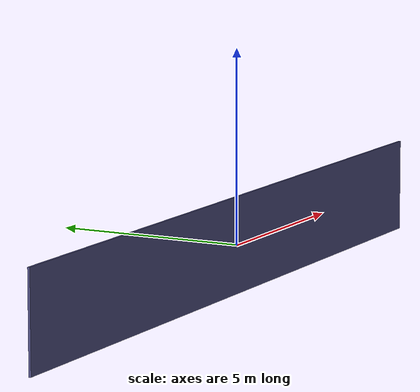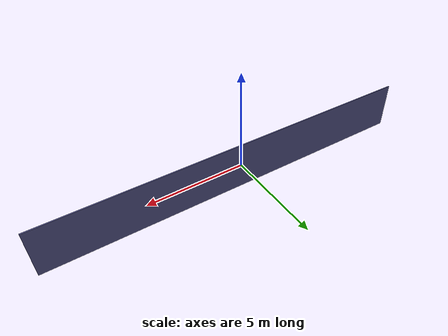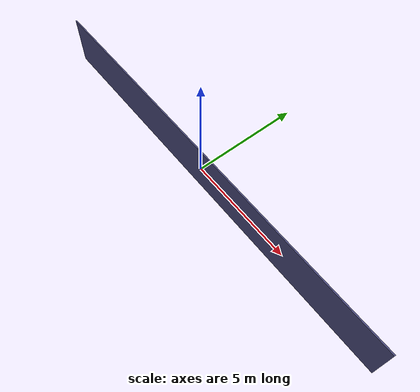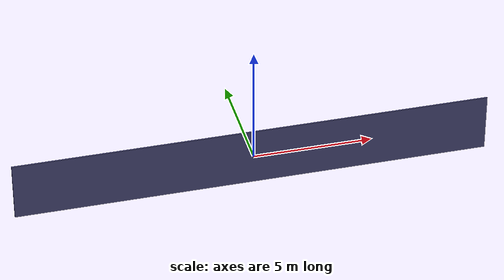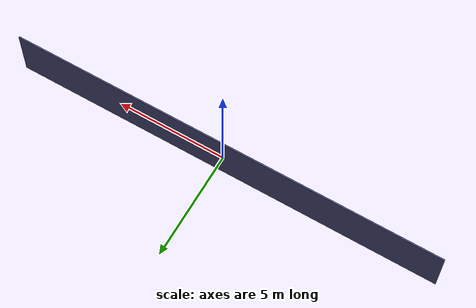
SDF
<?xml version='1.0'?>
<sdf version='1.6'>
  <model name='arena_wall'>
    <link name='link_0'>
      <pose frame=''>0 3e-06 0 0 -0 0</pose>
      <inertial>
        <mass>1.00347</mass>
        <inertia>
          <ixx>0.0839124</ixx>
          <ixy>0</ixy>
          <ixz>0</ixz>
          <iyy>24.373</iyy>
          <iyz>0</iyz>
          <izz>24.2897</izz>
        </inertia>
        <pose frame=''>0 0 0 0 -0 0</pose>
      </inertial>
      <visual name='visual'>
        <pose frame=''>0 0 0 0 -0 0</pose>
        <geometry>
          <box>
            <size>20 0.058872 2.5</size>
          </box>
        </geometry>
        <material>
          <lighting>1</lighting>
          <script>
              <uri>model://arena_wall/materials/scripts/repeated.material</uri>
              <name>WallRepeatedTexture</name>
          </script>
          <ambient>0.3 0.3 0.5 1</ambient>
          <diffuse>0.3 0.3 0.5 1</diffuse>
          <specular>0.01 0.01 0.01 1</specular>
          <emissive>0 0 0 1</emissive>
        </material>
        <cast_shadows>1</cast_shadows>
        <transparency>0</transparency>
      </visual>
      <collision name='collision'>
        <laser_retro>0</laser_retro>
        <max_contacts>10</max_contacts>
        <pose frame=''>0 0 0 0 -0 0</pose>
        <geometry>
          <box>
            <size>20 0.058872 2.5</size>
          </box>
        </geometry>
        <surface>
          <friction>
            <ode>
              <mu>1</mu>
              <mu2>1</mu2>
              <fdir1>0 0 0</fdir1>
              <slip1>0</slip1>
              <slip2>0</slip2>
            </ode>
            <torsional>
              <coefficient>1</coefficient>
              <patch_radius>0</patch_radius>
              <surface_radius>0</surface_radius>
              <use_patch_radius>1</use_patch_radius>
              <ode>
                <slip>0</slip>
              </ode>
            </torsional>
          </friction>
          <bounce>
            <restitution_coefficient>0</restitution_coefficient>
            <threshold>1e+06</threshold>
          </bounce>
          <contact>
            <collide_without_contact>0</collide_without_contact>
            <collide_without_contact_bitmask>1</collide_without_contact_bitmask>
            <collide_bitmask>1</collide_bitmask>
            <ode>
              <soft_cfm>0</soft_cfm>
              <soft_erp>0.2</soft_erp>
              <kp>1e+13</kp>
              <kd>1</kd>
              <max_vel>0.01</max_vel>
              <min_depth>0</min_depth>
            </ode>
            <bullet>
              <split_impulse>1</split_impulse>
              <split_impulse_penetration_threshold>-0.01</split_impulse_penetration_threshold>
              <soft_cfm>0</soft_cfm>
              <soft_erp>0.2</soft_erp>
              <kp>1e+13</kp>
              <kd>1</kd>
            </bullet>
          </contact>
        </surface>
      </collision>
    </link>
    <static>1</static>
    <allow_auto_disable>1</allow_auto_disable>
  </model>
</sdf>
